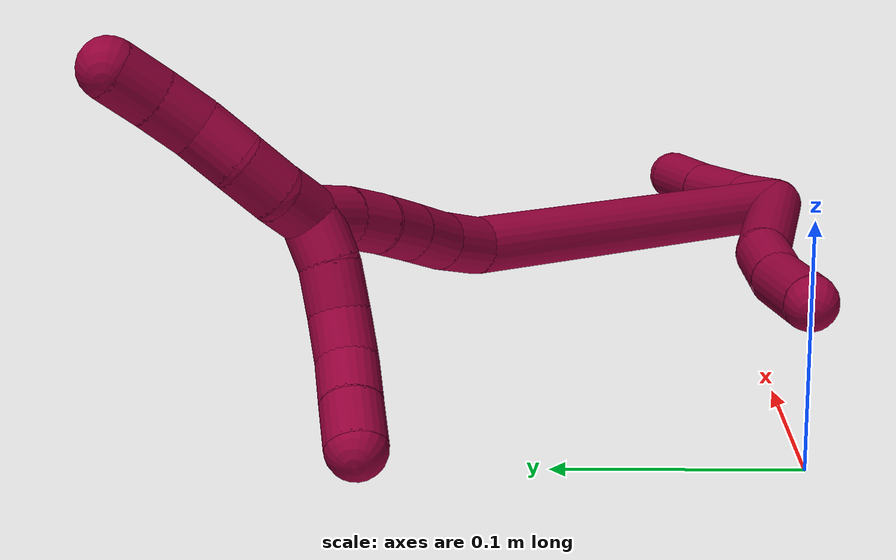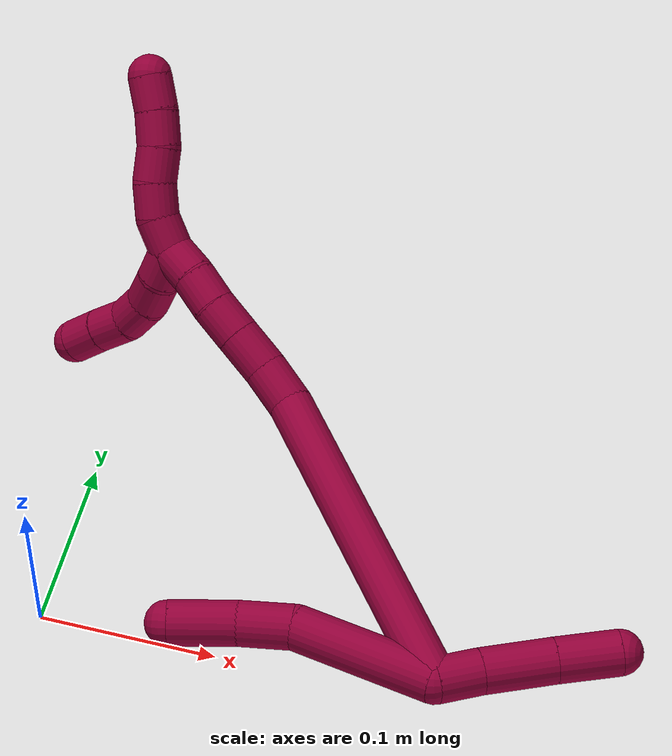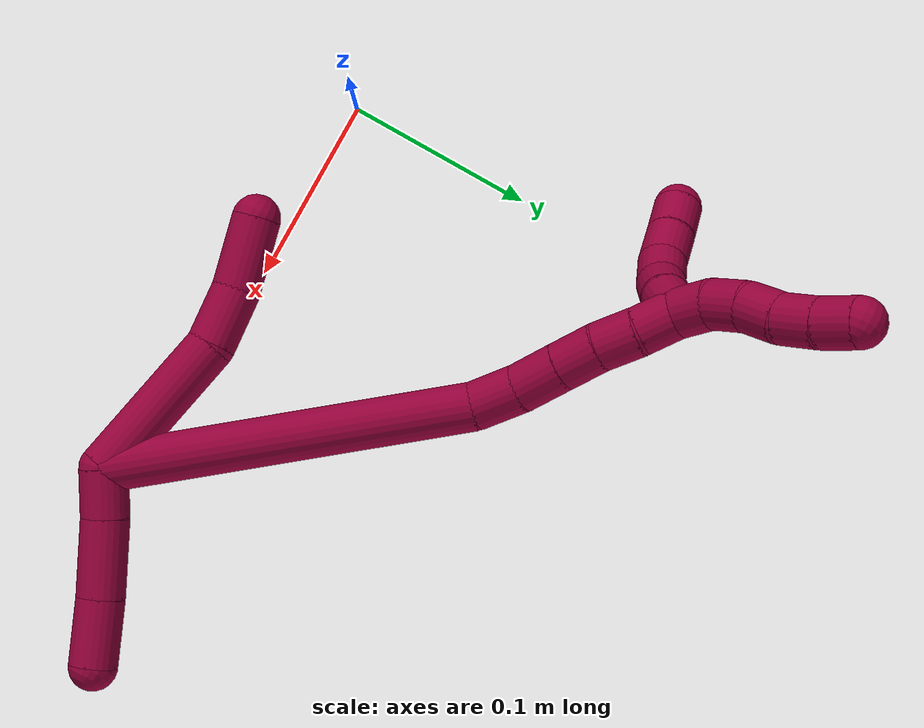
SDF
<sdf version="1.7">
 <world name="default">
  <model name="8">
   <static>0</static>
   <link name="8">
    <collision name="collision-cylinder-e_1_2_8">
     <pose>-0.011976 0.000586 -0.038691 -3.12645 -0.300145 3.04153</pose>
     <geometry><cylinder><radius>0.0125</radius><length>0.081013</length></cylinder></geometry>
     <surface>
      <friction><ode><mu>1.16</mu><mu2>1.16</mu2><slip1>0</slip1><slip2>0</slip2></ode></friction>
      <contact><ode><kp>1e+06</kp><kd>1</kd><max_vel>0</max_vel><min_depth>0.001</min_depth></ode></contact>
     </surface>
    </collision>
    <visual name="visual-cylinder-e_1_2_8">
     <pose>-0.011976 0.000586 -0.038691 -3.12645 -0.300145 3.04153</pose>
     <geometry><cylinder><radius>0.0125</radius><length>0.081013</length></cylinder></geometry>
     <material><ambient>0.584314 0 0.227451 1</ambient></material>
    </visual>
    <collision name="collision-cylinder-e_2_8_9">
     <pose>-0.024817 -0.001376 -0.092648 2.97618 -0.055793 -0.64939</pose>
     <geometry><cylinder><radius>0.0125</radius><length>0.031001</length></cylinder></geometry>
     <surface>
      <friction><ode><mu>1.16</mu><mu2>1.16</mu2><slip1>0</slip1><slip2>0</slip2></ode></friction>
      <contact><ode><kp>1e+06</kp><kd>1</kd><max_vel>0</max_vel><min_depth>0.001</min_depth></ode></contact>
     </surface>
    </collision>
    <visual name="visual-cylinder-e_2_8_9">
     <pose>-0.024817 -0.001376 -0.092648 2.97618 -0.055793 -0.64939</pose>
     <geometry><cylinder><radius>0.0125</radius><length>0.031001</length></cylinder></geometry>
     <material><ambient>0.584314 0 0.227451 1</ambient></material>
    </visual>
    <collision name="collision-cylinder-e_3_9_6">
     <pose>-0.026364 -0.010305 -0.125789 2.79879 -0.035968 -0.207064</pose>
     <geometry><cylinder><radius>0.0125</radius><length>0.037986</length></cylinder></geometry>
     <surface>
      <friction><ode><mu>1.16</mu><mu2>1.16</mu2><slip1>0</slip1><slip2>0</slip2></ode></friction>
      <contact><ode><kp>1e+06</kp><kd>1</kd><max_vel>0</max_vel><min_depth>0.001</min_depth></ode></contact>
     </surface>
    </collision>
    <visual name="visual-cylinder-e_3_9_6">
     <pose>-0.026364 -0.010305 -0.125789 2.79879 -0.035968 -0.207064</pose>
     <geometry><cylinder><radius>0.0125</radius><length>0.037986</length></cylinder></geometry>
     <material><ambient>0.584314 0 0.227451 1</ambient></material>
    </visual>
    <collision name="collision-cylinder-e_1_2_10">
     <pose>-0.001246 0.007291 0.010117 -0.624506 -0.099559 0.032163</pose>
     <geometry><cylinder><radius>0.0125</radius><length>0.025065</length></cylinder></geometry>
     <surface>
      <friction><ode><mu>1.16</mu><mu2>1.16</mu2><slip1>0</slip1><slip2>0</slip2></ode></friction>
      <contact><ode><kp>1e+06</kp><kd>1</kd><max_vel>0</max_vel><min_depth>0.001</min_depth></ode></contact>
     </surface>
    </collision>
    <visual name="visual-cylinder-e_1_2_10">
     <pose>-0.001246 0.007291 0.010117 -0.624506 -0.099559 0.032163</pose>
     <geometry><cylinder><radius>0.0125</radius><length>0.025065</length></cylinder></geometry>
     <material><ambient>0.584314 0 0.227451 1</ambient></material>
    </visual>
    <collision name="collision-cylinder-e_2_10_11">
     <pose>-0.003861 0.024876 0.03753 -0.536805 -0.067932 0.018691</pose>
     <geometry><cylinder><radius>0.0125</radius><length>0.040348</length></cylinder></geometry>
     <surface>
      <friction><ode><mu>1.16</mu><mu2>1.16</mu2><slip1>0</slip1><slip2>0</slip2></ode></friction>
      <contact><ode><kp>1e+06</kp><kd>1</kd><max_vel>0</max_vel><min_depth>0.001</min_depth></ode></contact>
     </surface>
    </collision>
    <visual name="visual-cylinder-e_2_10_11">
     <pose>-0.003861 0.024876 0.03753 -0.536805 -0.067932 0.018691</pose>
     <geometry><cylinder><radius>0.0125</radius><length>0.040348</length></cylinder></geometry>
     <material><ambient>0.584314 0 0.227451 1</ambient></material>
    </visual>
    <collision name="collision-cylinder-e_3_11_5">
     <pose>-0.006306 0.043062 0.070176 -0.474962 -0.062228 0.015067</pose>
     <geometry><cylinder><radius>0.0125</radius><length>0.034587</length></cylinder></geometry>
     <surface>
      <friction><ode><mu>1.16</mu><mu2>1.16</mu2><slip1>0</slip1><slip2>0</slip2></ode></friction>
      <contact><ode><kp>1e+06</kp><kd>1</kd><max_vel>0</max_vel><min_depth>0.001</min_depth></ode></contact>
     </surface>
    </collision>
    <visual name="visual-cylinder-e_3_11_5">
     <pose>-0.006306 0.043062 0.070176 -0.474962 -0.062228 0.015067</pose>
     <geometry><cylinder><radius>0.0125</radius><length>0.034587</length></cylinder></geometry>
     <material><ambient>0.584314 0 0.227451 1</ambient></material>
    </visual>
    <collision name="collision-cylinder-e_1_2_12">
     <pose>-0.064693 0.041056 -0.054411 -2.49518 -0.759286 1.74489</pose>
     <geometry><cylinder><radius>0.0125</radius><length>0.187949</length></cylinder></geometry>
     <surface>
      <friction><ode><mu>1.16</mu><mu2>1.16</mu2><slip1>0</slip1><slip2>0</slip2></ode></friction>
      <contact><ode><kp>1e+06</kp><kd>1</kd><max_vel>0</max_vel><min_depth>0.001</min_depth></ode></contact>
     </surface>
    </collision>
    <visual name="visual-cylinder-e_1_2_12">
     <pose>-0.064693 0.041056 -0.054411 -2.49518 -0.759286 1.74489</pose>
     <geometry><cylinder><radius>0.0125</radius><length>0.187949</length></cylinder></geometry>
     <material><ambient>0.584314 0 0.227451 1</ambient></material>
    </visual>
    <collision name="collision-cylinder-e_2_12_13">
     <pose>-0.13894 0.083855 -0.116749 -2.92516 -0.866602 2.68028</pose>
     <geometry><cylinder><radius>0.0125</radius><length>0.025074</length></cylinder></geometry>
     <surface>
      <friction><ode><mu>1.16</mu><mu2>1.16</mu2><slip1>0</slip1><slip2>0</slip2></ode></friction>
      <contact><ode><kp>1e+06</kp><kd>1</kd><max_vel>0</max_vel><min_depth>0.001</min_depth></ode></contact>
     </surface>
    </collision>
    <visual name="visual-cylinder-e_2_12_13">
     <pose>-0.13894 0.083855 -0.116749 -2.92516 -0.866602 2.68028</pose>
     <geometry><cylinder><radius>0.0125</radius><length>0.025074</length></cylinder></geometry>
     <material><ambient>0.584314 0 0.227451 1</ambient></material>
    </visual>
    <collision name="collision-cylinder-e_3_13_14">
     <pose>-0.15768 0.08565 -0.132526 -3.13503 -0.863563 3.12735</pose>
     <geometry><cylinder><radius>0.0125</radius><length>0.024165</length></cylinder></geometry>
     <surface>
      <friction><ode><mu>1.16</mu><mu2>1.16</mu2><slip1>0</slip1><slip2>0</slip2></ode></friction>
      <contact><ode><kp>1e+06</kp><kd>1</kd><max_vel>0</max_vel><min_depth>0.001</min_depth></ode></contact>
     </surface>
    </collision>
    <visual name="visual-cylinder-e_3_13_14">
     <pose>-0.15768 0.08565 -0.132526 -3.13503 -0.863563 3.12735</pose>
     <geometry><cylinder><radius>0.0125</radius><length>0.024165</length></cylinder></geometry>
     <material><ambient>0.584314 0 0.227451 1</ambient></material>
    </visual>
    <collision name="collision-cylinder-e_4_14_15">
     <pose>-0.175026 0.085926 -0.147408 -3.10959 -0.859429 3.07179</pose>
     <geometry><cylinder><radius>0.0125</radius><length>0.02155</length></cylinder></geometry>
     <surface>
      <friction><ode><mu>1.16</mu><mu2>1.16</mu2><slip1>0</slip1><slip2>0</slip2></ode></friction>
      <contact><ode><kp>1e+06</kp><kd>1</kd><max_vel>0</max_vel><min_depth>0.001</min_depth></ode></contact>
     </surface>
    </collision>
    <visual name="visual-cylinder-e_4_14_15">
     <pose>-0.175026 0.085926 -0.147408 -3.10959 -0.859429 3.07179</pose>
     <geometry><cylinder><radius>0.0125</radius><length>0.02155</length></cylinder></geometry>
     <material><ambient>0.584314 0 0.227451 1</ambient></material>
    </visual>
    <collision name="collision-cylinder-e_5_15_16">
     <pose>-0.191372 0.087369 -0.16084 -2.95359 -0.898378 2.75532</pose>
     <geometry><cylinder><radius>0.0125</radius><length>0.020924</length></cylinder></geometry>
     <surface>
      <friction><ode><mu>1.16</mu><mu2>1.16</mu2><slip1>0</slip1><slip2>0</slip2></ode></friction>
      <contact><ode><kp>1e+06</kp><kd>1</kd><max_vel>0</max_vel><min_depth>0.001</min_depth></ode></contact>
     </surface>
    </collision>
    <visual name="visual-cylinder-e_5_15_16">
     <pose>-0.191372 0.087369 -0.16084 -2.95359 -0.898378 2.75532</pose>
     <geometry><cylinder><radius>0.0125</radius><length>0.020924</length></cylinder></geometry>
     <material><ambient>0.584314 0 0.227451 1</ambient></material>
    </visual>
    <collision name="collision-cylinder-e_6_16_1">
     <pose>-0.206527 0.090223 -0.174463 -2.9188 -0.755293 2.5919</pose>
     <geometry><cylinder><radius>0.0125</radius><length>0.020338</length></cylinder></geometry>
     <surface>
      <friction><ode><mu>1.16</mu><mu2>1.16</mu2><slip1>0</slip1><slip2>0</slip2></ode></friction>
      <contact><ode><kp>1e+06</kp><kd>1</kd><max_vel>0</max_vel><min_depth>0.001</min_depth></ode></contact>
     </surface>
    </collision>
    <visual name="visual-cylinder-e_6_16_1">
     <pose>-0.206527 0.090223 -0.174463 -2.9188 -0.755293 2.5919</pose>
     <geometry><cylinder><radius>0.0125</radius><length>0.020338</length></cylinder></geometry>
     <material><ambient>0.584314 0 0.227451 1</ambient></material>
    </visual>
    <collision name="collision-cylinder-e_1_1_17">
     <pose>-0.222838 0.091208 -0.185197 2.95849 -1.20535 -2.8763</pose>
     <geometry><cylinder><radius>0.0125</radius><length>0.02</length></cylinder></geometry>
     <surface>
      <friction><ode><mu>1.16</mu><mu2>1.16</mu2><slip1>0</slip1><slip2>0</slip2></ode></friction>
      <contact><ode><kp>1e+06</kp><kd>1</kd><max_vel>0</max_vel><min_depth>0.001</min_depth></ode></contact>
     </surface>
    </collision>
    <visual name="visual-cylinder-e_1_1_17">
     <pose>-0.222838 0.091208 -0.185197 2.95849 -1.20535 -2.8763</pose>
     <geometry><cylinder><radius>0.0125</radius><length>0.02</length></cylinder></geometry>
     <material><ambient>0.584314 0 0.227451 1</ambient></material>
    </visual>
    <collision name="collision-cylinder-e_2_17_18">
     <pose>-0.242156 0.090818 -0.189313 -2.73223 -1.50521 2.7053</pose>
     <geometry><cylinder><radius>0.0125</radius><length>0.02</length></cylinder></geometry>
     <surface>
      <friction><ode><mu>1.16</mu><mu2>1.16</mu2><slip1>0</slip1><slip2>0</slip2></ode></friction>
      <contact><ode><kp>1e+06</kp><kd>1</kd><max_vel>0</max_vel><min_depth>0.001</min_depth></ode></contact>
     </surface>
    </collision>
    <visual name="visual-cylinder-e_2_17_18">
     <pose>-0.242156 0.090818 -0.189313 -2.73223 -1.50521 2.7053</pose>
     <geometry><cylinder><radius>0.0125</radius><length>0.02</length></cylinder></geometry>
     <material><ambient>0.584314 0 0.227451 1</ambient></material>
    </visual>
    <collision name="collision-cylinder-e_3_18_19">
     <pose>-0.261976 0.092253 -0.188584 -0.723102 -1.3924 0.612293</pose>
     <geometry><cylinder><radius>0.0125</radius><length>0.02</length></cylinder></geometry>
     <surface>
      <friction><ode><mu>1.16</mu><mu2>1.16</mu2><slip1>0</slip1><slip2>0</slip2></ode></friction>
      <contact><ode><kp>1e+06</kp><kd>1</kd><max_vel>0</max_vel><min_depth>0.001</min_depth></ode></contact>
     </surface>
    </collision>
    <visual name="visual-cylinder-e_3_18_19">
     <pose>-0.261976 0.092253 -0.188584 -0.723102 -1.3924 0.612293</pose>
     <geometry><cylinder><radius>0.0125</radius><length>0.02</length></cylinder></geometry>
     <material><ambient>0.584314 0 0.227451 1</ambient></material>
    </visual>
    <collision name="collision-cylinder-e_4_19_20">
     <pose>-0.281741 0.09441 -0.187994 -2.21705 -1.44747 2.11475</pose>
     <geometry><cylinder><radius>0.0125</radius><length>0.02</length></cylinder></geometry>
     <surface>
      <friction><ode><mu>1.16</mu><mu2>1.16</mu2><slip1>0</slip1><slip2>0</slip2></ode></friction>
      <contact><ode><kp>1e+06</kp><kd>1</kd><max_vel>0</max_vel><min_depth>0.001</min_depth></ode></contact>
     </surface>
    </collision>
    <visual name="visual-cylinder-e_4_19_20">
     <pose>-0.281741 0.09441 -0.187994 -2.21705 -1.44747 2.11475</pose>
     <geometry><cylinder><radius>0.0125</radius><length>0.02</length></cylinder></geometry>
     <material><ambient>0.584314 0 0.227451 1</ambient></material>
    </visual>
    <collision name="collision-cylinder-e_5_20_4">
     <pose>-0.30146 0.096084 -0.190628 -2.79101 -1.3678 2.71369</pose>
     <geometry><cylinder><radius>0.0125</radius><length>0.02</length></cylinder></geometry>
     <surface>
      <friction><ode><mu>1.16</mu><mu2>1.16</mu2><slip1>0</slip1><slip2>0</slip2></ode></friction>
      <contact><ode><kp>1e+06</kp><kd>1</kd><max_vel>0</max_vel><min_depth>0.001</min_depth></ode></contact>
     </surface>
    </collision>
    <visual name="visual-cylinder-e_5_20_4">
     <pose>-0.30146 0.096084 -0.190628 -2.79101 -1.3678 2.71369</pose>
     <geometry><cylinder><radius>0.0125</radius><length>0.02</length></cylinder></geometry>
     <material><ambient>0.584314 0 0.227451 1</ambient></material>
    </visual>
    <collision name="collision-cylinder-e_1_1_21">
     <pose>-0.205392 0.094241 -0.187032 -2.72256 0.945224 -2.35329</pose>
     <geometry><cylinder><radius>0.0125</radius><length>0.02</length></cylinder></geometry>
     <surface>
      <friction><ode><mu>1.16</mu><mu2>1.16</mu2><slip1>0</slip1><slip2>0</slip2></ode></friction>
      <contact><ode><kp>1e+06</kp><kd>1</kd><max_vel>0</max_vel><min_depth>0.001</min_depth></ode></contact>
     </surface>
    </collision>
    <visual name="visual-cylinder-e_1_1_21">
     <pose>-0.205392 0.094241 -0.187032 -2.72256 0.945224 -2.35329</pose>
     <geometry><cylinder><radius>0.0125</radius><length>0.02</length></cylinder></geometry>
     <material><ambient>0.584314 0 0.227451 1</ambient></material>
    </visual>
    <collision name="collision-cylinder-e_2_21_22">
     <pose>-0.190143 0.100606 -0.198137 -2.53635 0.795647 -1.86365</pose>
     <geometry><cylinder><radius>0.0125</radius><length>0.02</length></cylinder></geometry>
     <surface>
      <friction><ode><mu>1.16</mu><mu2>1.16</mu2><slip1>0</slip1><slip2>0</slip2></ode></friction>
      <contact><ode><kp>1e+06</kp><kd>1</kd><max_vel>0</max_vel><min_depth>0.001</min_depth></ode></contact>
     </surface>
    </collision>
    <visual name="visual-cylinder-e_2_21_22">
     <pose>-0.190143 0.100606 -0.198137 -2.53635 0.795647 -1.86365</pose>
     <geometry><cylinder><radius>0.0125</radius><length>0.02</length></cylinder></geometry>
     <material><ambient>0.584314 0 0.227451 1</ambient></material>
    </visual>
    <collision name="collision-cylinder-e_3_22_23">
     <pose>-0.177381 0.107333 -0.211696 -2.8033 0.596568 -2.12756</pose>
     <geometry><cylinder><radius>0.0125</radius><length>0.02</length></cylinder></geometry>
     <surface>
      <friction><ode><mu>1.16</mu><mu2>1.16</mu2><slip1>0</slip1><slip2>0</slip2></ode></friction>
      <contact><ode><kp>1e+06</kp><kd>1</kd><max_vel>0</max_vel><min_depth>0.001</min_depth></ode></contact>
     </surface>
    </collision>
    <visual name="visual-cylinder-e_3_22_23">
     <pose>-0.177381 0.107333 -0.211696 -2.8033 0.596568 -2.12756</pose>
     <geometry><cylinder><radius>0.0125</radius><length>0.02</length></cylinder></geometry>
     <material><ambient>0.584314 0 0.227451 1</ambient></material>
    </visual>
    <collision name="collision-cylinder-e_4_23_24">
     <pose>-0.168503 0.111347 -0.228868 -3.00696 0.332039 -2.37652</pose>
     <geometry><cylinder><radius>0.0125</radius><length>0.02</length></cylinder></geometry>
     <surface>
      <friction><ode><mu>1.16</mu><mu2>1.16</mu2><slip1>0</slip1><slip2>0</slip2></ode></friction>
      <contact><ode><kp>1e+06</kp><kd>1</kd><max_vel>0</max_vel><min_depth>0.001</min_depth></ode></contact>
     </surface>
    </collision>
    <visual name="visual-cylinder-e_4_23_24">
     <pose>-0.168503 0.111347 -0.228868 -3.00696 0.332039 -2.37652</pose>
     <geometry><cylinder><radius>0.0125</radius><length>0.02</length></cylinder></geometry>
     <material><ambient>0.584314 0 0.227451 1</ambient></material>
    </visual>
    <collision name="collision-cylinder-e_5_24_3">
     <pose>-0.161598 0.114133 -0.247423 -2.97794 0.373175 -2.32198</pose>
     <geometry><cylinder><radius>0.0125</radius><length>0.02</length></cylinder></geometry>
     <surface>
      <friction><ode><mu>1.16</mu><mu2>1.16</mu2><slip1>0</slip1><slip2>0</slip2></ode></friction>
      <contact><ode><kp>1e+06</kp><kd>1</kd><max_vel>0</max_vel><min_depth>0.001</min_depth></ode></contact>
     </surface>
    </collision>
    <visual name="visual-cylinder-e_5_24_3">
     <pose>-0.161598 0.114133 -0.247423 -2.97794 0.373175 -2.32198</pose>
     <geometry><cylinder><radius>0.0125</radius><length>0.02</length></cylinder></geometry>
     <material><ambient>0.584314 0 0.227451 1</ambient></material>
    </visual>
    <collision name="collision-sphere-3">
     <pose>-0.157952 0.11565 -0.25661 0 -0 0</pose>
     <geometry><sphere><radius>0.0125</radius></sphere></geometry>
     <surface>
      <friction><ode><mu>1.16</mu><mu2>1.16</mu2><slip1>0</slip1><slip2>0</slip2></ode></friction>
      <contact><ode><kp>1e+06</kp><kd>1</kd><max_vel>0</max_vel><min_depth>0.001</min_depth></ode></contact>
     </surface>
    </collision>
    <visual name="visual-sphere-3">
     <pose>-0.157952 0.11565 -0.25661 0 -0 0</pose>
     <geometry><sphere><radius>0.0125</radius></sphere></geometry>
     <material><ambient>0.584314 0 0.227451 1</ambient></material>
    </visual>
    <collision name="collision-sphere-24">
     <pose>-0.165244 0.112616 -0.238236 0 -0 0</pose>
     <geometry><sphere><radius>0.0125</radius></sphere></geometry>
     <surface>
      <friction><ode><mu>1.16</mu><mu2>1.16</mu2><slip1>0</slip1><slip2>0</slip2></ode></friction>
      <contact><ode><kp>1e+06</kp><kd>1</kd><max_vel>0</max_vel><min_depth>0.001</min_depth></ode></contact>
     </surface>
    </collision>
    <visual name="visual-sphere-24">
     <pose>-0.165244 0.112616 -0.238236 0 -0 0</pose>
     <geometry><sphere><radius>0.0125</radius></sphere></geometry>
     <material><ambient>0.584314 0 0.227451 1</ambient></material>
    </visual>
    <collision name="collision-sphere-23">
     <pose>-0.171763 0.110078 -0.219499 0 -0 0</pose>
     <geometry><sphere><radius>0.0125</radius></sphere></geometry>
     <surface>
      <friction><ode><mu>1.16</mu><mu2>1.16</mu2><slip1>0</slip1><slip2>0</slip2></ode></friction>
      <contact><ode><kp>1e+06</kp><kd>1</kd><max_vel>0</max_vel><min_depth>0.001</min_depth></ode></contact>
     </surface>
    </collision>
    <visual name="visual-sphere-23">
     <pose>-0.171763 0.110078 -0.219499 0 -0 0</pose>
     <geometry><sphere><radius>0.0125</radius></sphere></geometry>
     <material><ambient>0.584314 0 0.227451 1</ambient></material>
    </visual>
    <collision name="collision-sphere-22">
     <pose>-0.182999 0.104587 -0.203892 0 -0 0</pose>
     <geometry><sphere><radius>0.0125</radius></sphere></geometry>
     <surface>
      <friction><ode><mu>1.16</mu><mu2>1.16</mu2><slip1>0</slip1><slip2>0</slip2></ode></friction>
      <contact><ode><kp>1e+06</kp><kd>1</kd><max_vel>0</max_vel><min_depth>0.001</min_depth></ode></contact>
     </surface>
    </collision>
    <visual name="visual-sphere-22">
     <pose>-0.182999 0.104587 -0.203892 0 -0 0</pose>
     <geometry><sphere><radius>0.0125</radius></sphere></geometry>
     <material><ambient>0.584314 0 0.227451 1</ambient></material>
    </visual>
    <collision name="collision-sphere-21">
     <pose>-0.197286 0.096624 -0.192381 0 -0 0</pose>
     <geometry><sphere><radius>0.0125</radius></sphere></geometry>
     <surface>
      <friction><ode><mu>1.16</mu><mu2>1.16</mu2><slip1>0</slip1><slip2>0</slip2></ode></friction>
      <contact><ode><kp>1e+06</kp><kd>1</kd><max_vel>0</max_vel><min_depth>0.001</min_depth></ode></contact>
     </surface>
    </collision>
    <visual name="visual-sphere-21">
     <pose>-0.197286 0.096624 -0.192381 0 -0 0</pose>
     <geometry><sphere><radius>0.0125</radius></sphere></geometry>
     <material><ambient>0.584314 0 0.227451 1</ambient></material>
    </visual>
    <collision name="collision-sphere-4">
     <pose>-0.311255 0.096777 -0.192522 0 -0 0</pose>
     <geometry><sphere><radius>0.0125</radius></sphere></geometry>
     <surface>
      <friction><ode><mu>1.16</mu><mu2>1.16</mu2><slip1>0</slip1><slip2>0</slip2></ode></friction>
      <contact><ode><kp>1e+06</kp><kd>1</kd><max_vel>0</max_vel><min_depth>0.001</min_depth></ode></contact>
     </surface>
    </collision>
    <visual name="visual-sphere-4">
     <pose>-0.311255 0.096777 -0.192522 0 -0 0</pose>
     <geometry><sphere><radius>0.0125</radius></sphere></geometry>
     <material><ambient>0.584314 0 0.227451 1</ambient></material>
    </visual>
    <collision name="collision-sphere-20">
     <pose>-0.291665 0.095392 -0.188735 0 -0 0</pose>
     <geometry><sphere><radius>0.0125</radius></sphere></geometry>
     <surface>
      <friction><ode><mu>1.16</mu><mu2>1.16</mu2><slip1>0</slip1><slip2>0</slip2></ode></friction>
      <contact><ode><kp>1e+06</kp><kd>1</kd><max_vel>0</max_vel><min_depth>0.001</min_depth></ode></contact>
     </surface>
    </collision>
    <visual name="visual-sphere-20">
     <pose>-0.291665 0.095392 -0.188735 0 -0 0</pose>
     <geometry><sphere><radius>0.0125</radius></sphere></geometry>
     <material><ambient>0.584314 0 0.227451 1</ambient></material>
    </visual>
    <collision name="collision-sphere-11">
     <pose>-0.00523 0.035169 0.054827 0 -0 0</pose>
     <geometry><sphere><radius>0.0125</radius></sphere></geometry>
     <surface>
      <friction><ode><mu>1.16</mu><mu2>1.16</mu2><slip1>0</slip1><slip2>0</slip2></ode></friction>
      <contact><ode><kp>1e+06</kp><kd>1</kd><max_vel>0</max_vel><min_depth>0.001</min_depth></ode></contact>
     </surface>
    </collision>
    <visual name="visual-sphere-11">
     <pose>-0.00523 0.035169 0.054827 0 -0 0</pose>
     <geometry><sphere><radius>0.0125</radius></sphere></geometry>
     <material><ambient>0.584314 0 0.227451 1</ambient></material>
    </visual>
    <collision name="collision-sphere-10">
     <pose>-0.002491 0.014583 0.020233 0 -0 0</pose>
     <geometry><sphere><radius>0.0125</radius></sphere></geometry>
     <surface>
      <friction><ode><mu>1.16</mu><mu2>1.16</mu2><slip1>0</slip1><slip2>0</slip2></ode></friction>
      <contact><ode><kp>1e+06</kp><kd>1</kd><max_vel>0</max_vel><min_depth>0.001</min_depth></ode></contact>
     </surface>
    </collision>
    <visual name="visual-sphere-10">
     <pose>-0.002491 0.014583 0.020233 0 -0 0</pose>
     <geometry><sphere><radius>0.0125</radius></sphere></geometry>
     <material><ambient>0.584314 0 0.227451 1</ambient></material>
    </visual>
    <collision name="collision-sphere-6">
     <pose>-0.027047 -0.016685 -0.143665 0 -0 0</pose>
     <geometry><sphere><radius>0.0125</radius></sphere></geometry>
     <surface>
      <friction><ode><mu>1.16</mu><mu2>1.16</mu2><slip1>0</slip1><slip2>0</slip2></ode></friction>
      <contact><ode><kp>1e+06</kp><kd>1</kd><max_vel>0</max_vel><min_depth>0.001</min_depth></ode></contact>
     </surface>
    </collision>
    <visual name="visual-sphere-6">
     <pose>-0.027047 -0.016685 -0.143665 0 -0 0</pose>
     <geometry><sphere><radius>0.0125</radius></sphere></geometry>
     <material><ambient>0.584314 0 0.227451 1</ambient></material>
    </visual>
    <collision name="collision-sphere-9">
     <pose>-0.025681 -0.003925 -0.107913 0 -0 0</pose>
     <geometry><sphere><radius>0.0125</radius></sphere></geometry>
     <surface>
      <friction><ode><mu>1.16</mu><mu2>1.16</mu2><slip1>0</slip1><slip2>0</slip2></ode></friction>
      <contact><ode><kp>1e+06</kp><kd>1</kd><max_vel>0</max_vel><min_depth>0.001</min_depth></ode></contact>
     </surface>
    </collision>
    <visual name="visual-sphere-9">
     <pose>-0.025681 -0.003925 -0.107913 0 -0 0</pose>
     <geometry><sphere><radius>0.0125</radius></sphere></geometry>
     <material><ambient>0.584314 0 0.227451 1</ambient></material>
    </visual>
    <collision name="collision-sphere-2">
     <geometry><sphere><radius>0.0125</radius></sphere></geometry>
     <surface>
      <friction><ode><mu>1.16</mu><mu2>1.16</mu2><slip1>0</slip1><slip2>0</slip2></ode></friction>
      <contact><ode><kp>1e+06</kp><kd>1</kd><max_vel>0</max_vel><min_depth>0.001</min_depth></ode></contact>
     </surface>
    </collision>
    <visual name="visual-sphere-2">
     <geometry><sphere><radius>0.0125</radius></sphere></geometry>
     <material><ambient>0.584314 0 0.227451 1</ambient></material>
    </visual>
    <collision name="collision-sphere-19">
     <pose>-0.271817 0.093428 -0.187253 0 -0 0</pose>
     <geometry><sphere><radius>0.0125</radius></sphere></geometry>
     <surface>
      <friction><ode><mu>1.16</mu><mu2>1.16</mu2><slip1>0</slip1><slip2>0</slip2></ode></friction>
      <contact><ode><kp>1e+06</kp><kd>1</kd><max_vel>0</max_vel><min_depth>0.001</min_depth></ode></contact>
     </surface>
    </collision>
    <visual name="visual-sphere-19">
     <pose>-0.271817 0.093428 -0.187253 0 -0 0</pose>
     <geometry><sphere><radius>0.0125</radius></sphere></geometry>
     <material><ambient>0.584314 0 0.227451 1</ambient></material>
    </visual>
    <collision name="collision-sphere-8">
     <pose>-0.023952 0.001172 -0.077383 0 -0 0</pose>
     <geometry><sphere><radius>0.0125</radius></sphere></geometry>
     <surface>
      <friction><ode><mu>1.16</mu><mu2>1.16</mu2><slip1>0</slip1><slip2>0</slip2></ode></friction>
      <contact><ode><kp>1e+06</kp><kd>1</kd><max_vel>0</max_vel><min_depth>0.001</min_depth></ode></contact>
     </surface>
    </collision>
    <visual name="visual-sphere-8">
     <pose>-0.023952 0.001172 -0.077383 0 -0 0</pose>
     <geometry><sphere><radius>0.0125</radius></sphere></geometry>
     <material><ambient>0.584314 0 0.227451 1</ambient></material>
    </visual>
    <collision name="collision-sphere-5">
     <pose>-0.007381 0.050955 0.085525 0 -0 0</pose>
     <geometry><sphere><radius>0.0125</radius></sphere></geometry>
     <surface>
      <friction><ode><mu>1.16</mu><mu2>1.16</mu2><slip1>0</slip1><slip2>0</slip2></ode></friction>
      <contact><ode><kp>1e+06</kp><kd>1</kd><max_vel>0</max_vel><min_depth>0.001</min_depth></ode></contact>
     </surface>
    </collision>
    <visual name="visual-sphere-5">
     <pose>-0.007381 0.050955 0.085525 0 -0 0</pose>
     <geometry><sphere><radius>0.0125</radius></sphere></geometry>
     <material><ambient>0.584314 0 0.227451 1</ambient></material>
    </visual>
    <collision name="collision-sphere-12">
     <pose>-0.129385 0.082112 -0.108821 0 -0 0</pose>
     <geometry><sphere><radius>0.0125</radius></sphere></geometry>
     <surface>
      <friction><ode><mu>1.16</mu><mu2>1.16</mu2><slip1>0</slip1><slip2>0</slip2></ode></friction>
      <contact><ode><kp>1e+06</kp><kd>1</kd><max_vel>0</max_vel><min_depth>0.001</min_depth></ode></contact>
     </surface>
    </collision>
    <visual name="visual-sphere-12">
     <pose>-0.129385 0.082112 -0.108821 0 -0 0</pose>
     <geometry><sphere><radius>0.0125</radius></sphere></geometry>
     <material><ambient>0.584314 0 0.227451 1</ambient></material>
    </visual>
    <collision name="collision-sphere-13">
     <pose>-0.148495 0.085598 -0.124676 0 -0 0</pose>
     <geometry><sphere><radius>0.0125</radius></sphere></geometry>
     <surface>
      <friction><ode><mu>1.16</mu><mu2>1.16</mu2><slip1>0</slip1><slip2>0</slip2></ode></friction>
      <contact><ode><kp>1e+06</kp><kd>1</kd><max_vel>0</max_vel><min_depth>0.001</min_depth></ode></contact>
     </surface>
    </collision>
    <visual name="visual-sphere-13">
     <pose>-0.148495 0.085598 -0.124676 0 -0 0</pose>
     <geometry><sphere><radius>0.0125</radius></sphere></geometry>
     <material><ambient>0.584314 0 0.227451 1</ambient></material>
    </visual>
    <collision name="collision-sphere-14">
     <pose>-0.166864 0.085701 -0.140377 0 -0 0</pose>
     <geometry><sphere><radius>0.0125</radius></sphere></geometry>
     <surface>
      <friction><ode><mu>1.16</mu><mu2>1.16</mu2><slip1>0</slip1><slip2>0</slip2></ode></friction>
      <contact><ode><kp>1e+06</kp><kd>1</kd><max_vel>0</max_vel><min_depth>0.001</min_depth></ode></contact>
     </surface>
    </collision>
    <visual name="visual-sphere-14">
     <pose>-0.166864 0.085701 -0.140377 0 -0 0</pose>
     <geometry><sphere><radius>0.0125</radius></sphere></geometry>
     <material><ambient>0.584314 0 0.227451 1</ambient></material>
    </visual>
    <collision name="collision-sphere-15">
     <pose>-0.183187 0.086151 -0.154439 0 -0 0</pose>
     <geometry><sphere><radius>0.0125</radius></sphere></geometry>
     <surface>
      <friction><ode><mu>1.16</mu><mu2>1.16</mu2><slip1>0</slip1><slip2>0</slip2></ode></friction>
      <contact><ode><kp>1e+06</kp><kd>1</kd><max_vel>0</max_vel><min_depth>0.001</min_depth></ode></contact>
     </surface>
    </collision>
    <visual name="visual-sphere-15">
     <pose>-0.183187 0.086151 -0.154439 0 -0 0</pose>
     <geometry><sphere><radius>0.0125</radius></sphere></geometry>
     <material><ambient>0.584314 0 0.227451 1</ambient></material>
    </visual>
    <collision name="collision-sphere-16">
     <pose>-0.199556 0.088587 -0.167242 0 -0 0</pose>
     <geometry><sphere><radius>0.0125</radius></sphere></geometry>
     <surface>
      <friction><ode><mu>1.16</mu><mu2>1.16</mu2><slip1>0</slip1><slip2>0</slip2></ode></friction>
      <contact><ode><kp>1e+06</kp><kd>1</kd><max_vel>0</max_vel><min_depth>0.001</min_depth></ode></contact>
     </surface>
    </collision>
    <visual name="visual-sphere-16">
     <pose>-0.199556 0.088587 -0.167242 0 -0 0</pose>
     <geometry><sphere><radius>0.0125</radius></sphere></geometry>
     <material><ambient>0.584314 0 0.227451 1</ambient></material>
    </visual>
    <collision name="collision-sphere-1">
     <pose>-0.213498 0.091859 -0.181683 0 -0 0</pose>
     <geometry><sphere><radius>0.0125</radius></sphere></geometry>
     <surface>
      <friction><ode><mu>1.16</mu><mu2>1.16</mu2><slip1>0</slip1><slip2>0</slip2></ode></friction>
      <contact><ode><kp>1e+06</kp><kd>1</kd><max_vel>0</max_vel><min_depth>0.001</min_depth></ode></contact>
     </surface>
    </collision>
    <visual name="visual-sphere-1">
     <pose>-0.213498 0.091859 -0.181683 0 -0 0</pose>
     <geometry><sphere><radius>0.0125</radius></sphere></geometry>
     <material><ambient>0.584314 0 0.227451 1</ambient></material>
    </visual>
    <collision name="collision-sphere-18">
     <pose>-0.252134 0.091079 -0.189914 0 -0 0</pose>
     <geometry><sphere><radius>0.0125</radius></sphere></geometry>
     <surface>
      <friction><ode><mu>1.16</mu><mu2>1.16</mu2><slip1>0</slip1><slip2>0</slip2></ode></friction>
      <contact><ode><kp>1e+06</kp><kd>1</kd><max_vel>0</max_vel><min_depth>0.001</min_depth></ode></contact>
     </surface>
    </collision>
    <visual name="visual-sphere-18">
     <pose>-0.252134 0.091079 -0.189914 0 -0 0</pose>
     <geometry><sphere><radius>0.0125</radius></sphere></geometry>
     <material><ambient>0.584314 0 0.227451 1</ambient></material>
    </visual>
    <collision name="collision-sphere-17">
     <pose>-0.232177 0.090557 -0.188711 0 -0 0</pose>
     <geometry><sphere><radius>0.0125</radius></sphere></geometry>
     <surface>
      <friction><ode><mu>1.16</mu><mu2>1.16</mu2><slip1>0</slip1><slip2>0</slip2></ode></friction>
      <contact><ode><kp>1e+06</kp><kd>1</kd><max_vel>0</max_vel><min_depth>0.001</min_depth></ode></contact>
     </surface>
    </collision>
    <visual name="visual-sphere-17">
     <pose>-0.232177 0.090557 -0.188711 0 -0 0</pose>
     <geometry><sphere><radius>0.0125</radius></sphere></geometry>
     <material><ambient>0.584314 0 0.227451 1</ambient></material>
    </visual>
    <inertial>
     <pose>-0.105119 0.052722 -0.097778 0 -0 0</pose>
     <mass>0.75</mass>
     <inertia>
      <ixx>0.000274</ixx>
      <ixy>0</ixy>
      <ixz>0</ixz>
      <iyy>0.00079</iyy>
      <iyz>0</iyz>
      <izz>0.000133</izz>
     </inertia>
    </inertial>
   </link>
   <pose>0.225394 -0.015965 0.056472 -1.16471 0.78202 -1.26186</pose>
  </model>
 </world>
</sdf>
